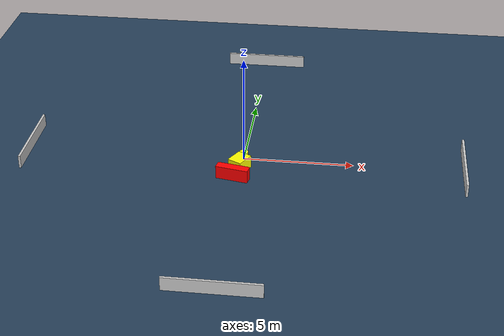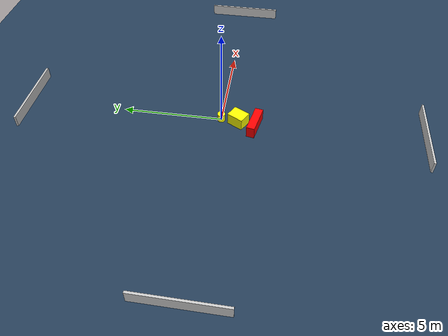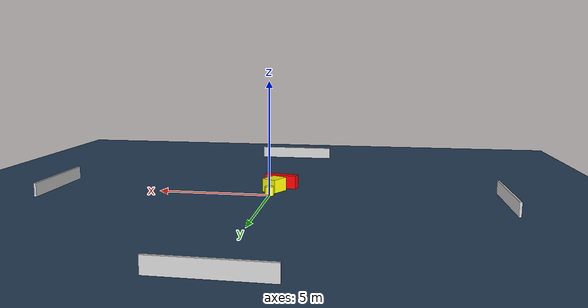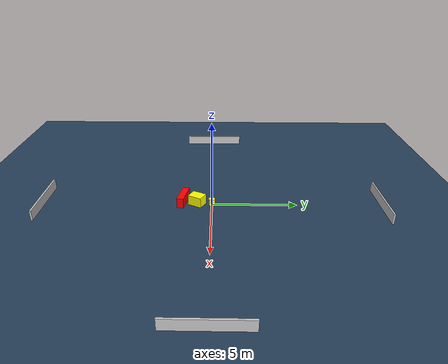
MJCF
<?xml version="1.0" ?>
<mujoco model="generated_environment">
  <option timestep="0.01" integrator="RK4" cone="elliptic"/>
  <default>
    <geom density="1"/>
  </default>
  <asset>
    <texture builtin="gradient" height="3072" name="skybox" rgb1="0.3 0.5 0.7" rgb2="0 0 0" type="skybox" width="512"/>
    <texture builtin="checker" height="300" name="groundplane" rgb1="0.2 0.3 0.4" rgb2="0.1 0.2 0.3" type="2d" width="300"/>
    <material name="groundplane" reflectance="0.2" texrepeat="5 5" texture="groundplane"/>
  </asset>
  <worldbody>
    <light dir="0 0 -1" directional="true" pos="0 0 1.5"/>
    <geom condim="3" friction="0.5 0.005 0.001" material="groundplane" name="floor" pos="0 0 0" size="0 0 0.05" type="plane"/>
    <body name="walls">
      <geom name="wall_1" condim="4" pos="-10.0 0.0 0.3" rgba="0.800000011920929 0.800000011920929 0.800000011920929 1.0" size="0.05 2.0 0.3" type="box"/>
      <geom name="wall_2" condim="4" pos="10.0 0.0 0.3" rgba="0.800000011920929 0.800000011920929 0.800000011920929 1.0" size="0.05 2.0 0.3" type="box"/>
      <geom name="wall_3" condim="4" pos="0.0 -10.0 0.3" rgba="0.800000011920929 0.800000011920929 0.800000011920929 1.0" size="2.0 0.05 0.3" type="box"/>
      <geom name="wall_4" condim="4" pos="0.0 10.0 0.3" rgba="0.800000011920929 0.800000011920929 0.800000011920929 1.0" size="2.0 0.05 0.3" type="box"/>
    </body>
    <body name="robot">
      <joint name="joint_x" type="slide" pos="0 0 0" axis="1 0 0"/>
      <joint name="joint_y" type="slide" pos="0 0 0" axis="0 1 0"/>
      <geom name="robot" type="cylinder" pos="0.0 0.0 0.2" size="0.2 0.2 0.0" mass="5.0" friction="1.0 0.005 0.0001" condim="4" rgba="1.0 1.0 0.0 1.0"/>
    </body>
    <body name="obstacle_1_movable">
      <geom name="obstacle_1_movable" condim="4" pos="-0.09187117476809606 -0.8726841216820114 0.3" euler="0 0 151.24686697164742" friction="0.0 0.005 0.001" rgba="1.0 1.0 0.0 1.0" size="0.338159612987316 0.42718956230704264 0.3" type="box" mass="0.1"/>
      <joint type="free"/>
    </body>
    <body name="obstacle_2_static">
      <geom name="obstacle_2_static" condim="4" pos="-0.2977137235498497 -1.7122763324490904 0.3" euler="0 0 348.60243467905065" friction="0.0 0.005 0.001" rgba="1.0 0.0 0.0 1.0" size="0.7405487599843601 0.20352866431921146 0.3" type="box"/>
    </body>
  </worldbody>
  <actuator>
    <motor name="actuator_x" joint="joint_x" gear="1" ctrlrange="-1 1"/>
    <motor name="actuator_y" joint="joint_y" gear="1" ctrlrange="-1 1"/>
  </actuator>
</mujoco>
